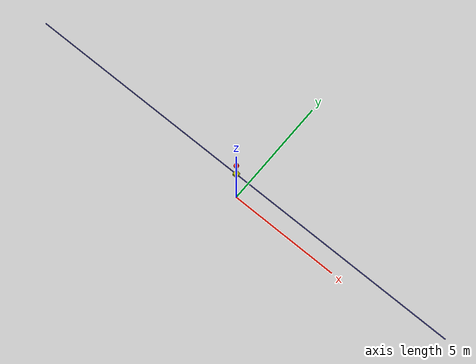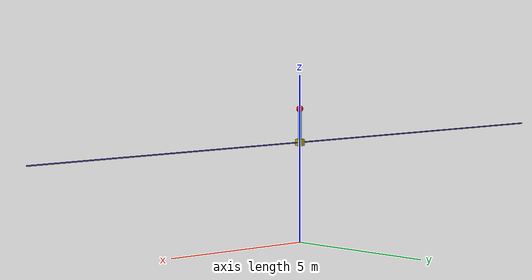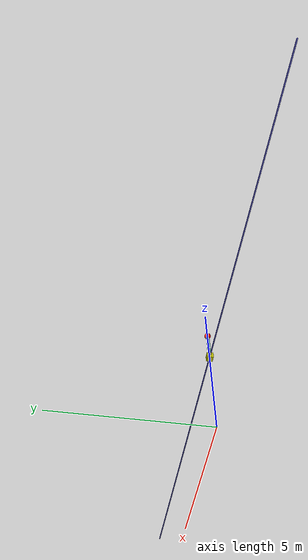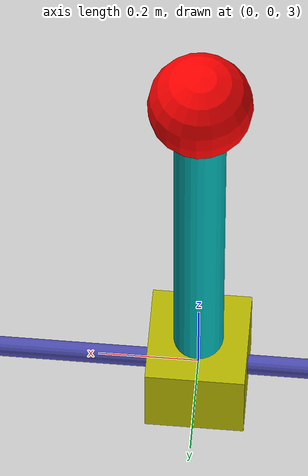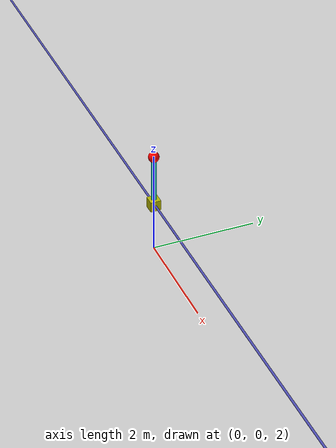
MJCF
<mujoco model="inverted pendulum">
	<compiler inertiafromgeom="true"/>
	<default>
		<joint armature="0" damping="0.000001" limited="true"/>
		<geom contype="0" friction="0 0 0" rgba="0.7 0.7 0 1"/>
		<tendon/>
		<motor ctrlrange="-100 100"/>
	</default>
	<option gravity="0 0 -9.81" integrator="RK4" timestep="0.001"/>
	<size nstack="3000"/>
	<worldbody>
		<!--geom name="ground" type="plane" pos="0 0 0" /-->
		<geom name="rail" pos="0 0 3" quat="0.707 0 0.707 0" rgba="0.3 0.3 0.7 1" size="0.02 10" type="capsule" mass = "2"/>
		<body name="cart" pos="0 0 3">
			<joint axis="1 0 0" limited="true" name="slider" pos="0 0 0" range="-10 10" type="slide"/>
			<geom name="cart" pos="0 0 0" quat="0.707 0 0.707 0" size="0.1 0.1 0.1 " type="box" mass = "2" />
			<body name="pole" pos="0 0 0">
				<joint axis="0 1 0" name="hinge" pos="0 0 0" range="-1800 1800" type="hinge"/>
				<!-- if use frometo , the second paramter of size(half-length of the cylinder) will not be used  -->
				<!--see mujoco  doc-->
				<geom fromto="0 0 0 0.001  0  1" name="cpole" rgba="0 0.7 0.7 1" size="0.05 0.5" type="cylinder" mass = "0.2" />

				<site name="tip" pos="0.001 0 1" rgba="1 0 0 1" size="0.1 0.1" type = "sphere"/>
			</body>
		</body>
	</worldbody>
	<actuator>
		<motor gear="1" joint="slider" name="slide"/>
	</actuator>

	<sensor>
		<jointpos name="slide_pos" joint="slider" noise="0.001" />

		<jointpos name="hinge_pos" joint="hinge" noise="0.001" />

		<jointvel name="slide_vel" joint="slider" noise="0.01" />

		<jointvel name="hinge_vel" joint="hinge" noise="0.01" />
	</sensor>

</mujoco>
